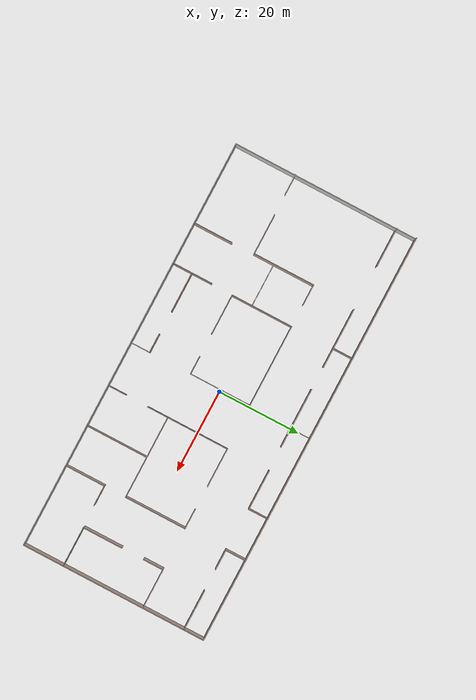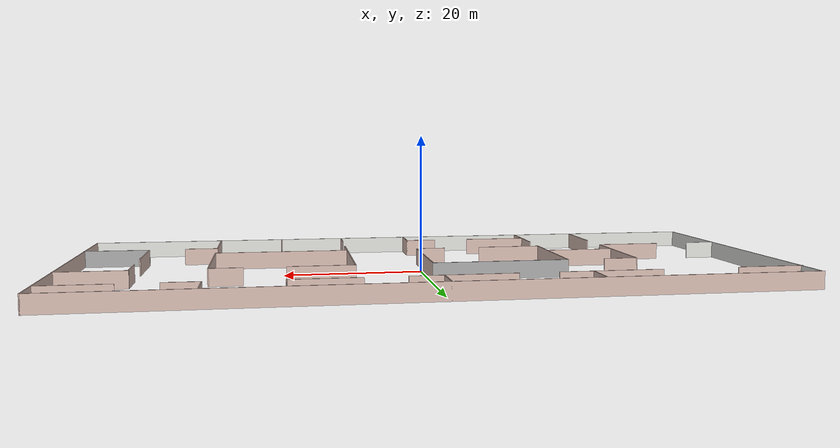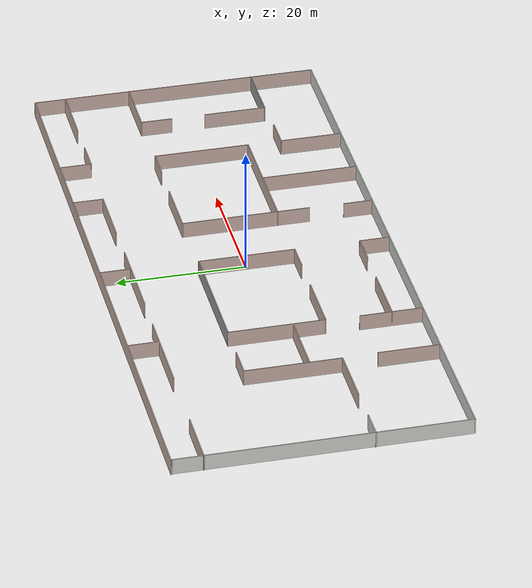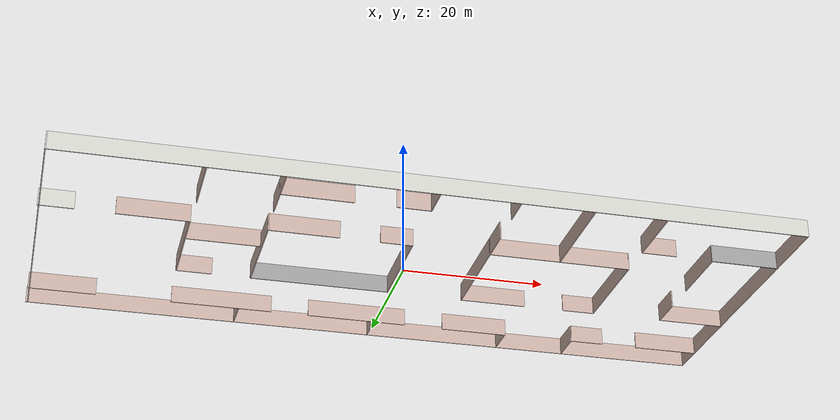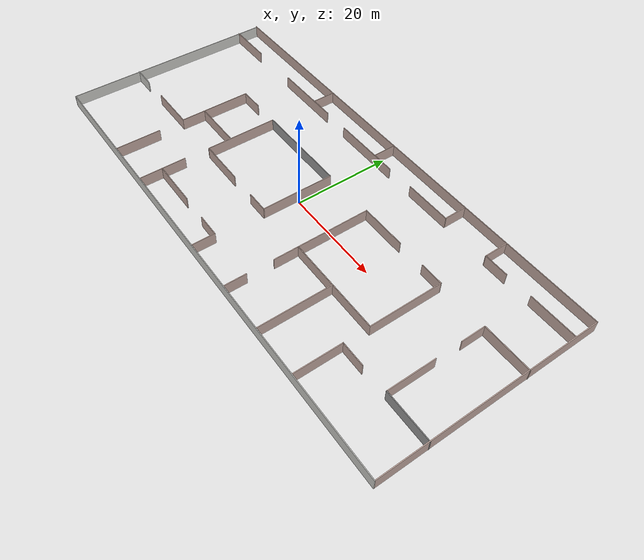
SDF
<?xml version='1.0'?>
<sdf version='1.6'>
  <model name='Untitled'>
    <pose frame=''>-0.075901 0.121979 0 0 -0 0</pose>
    <link name='Wall_0'>
      <collision name='Wall_0_Collision'>
        <geometry>
          <box>
            <size>100.25 0.15 2.5</size>
          </box>
        </geometry>
        <pose frame=''>0 0 1.25 0 -0 0</pose>
      </collision>
      <visual name='Wall_0_Visual'>
        <pose frame=''>0 0 1.25 0 -0 0</pose>
        <geometry>
          <box>
            <size>100.25 0.15 2.5</size>
          </box>
        </geometry>
        <material>
          <script>
            <uri>file://media/materials/scripts/gazebo.material</uri>
            <name>Gazebo/Grey</name>
          </script>
          <ambient>0.760784 0.662745 0.627451 1</ambient>
        </material>
        <meta>
          <layer>0</layer>
        </meta>
      </visual>
      <pose frame=''>-0.033615 22.425 0 0 -0 0</pose>
    </link>
    <link name='Wall_1'>
      <collision name='Wall_1_Collision'>
        <geometry>
          <box>
            <size>45 0.15 2.5</size>
          </box>
        </geometry>
        <pose frame=''>0 0 1.25 0 -0 0</pose>
      </collision>
      <visual name='Wall_1_Visual'>
        <pose frame=''>0 0 1.25 0 -0 0</pose>
        <geometry>
          <box>
            <size>45 0.15 2.5</size>
          </box>
        </geometry>
        <material>
          <script>
            <uri>file://media/materials/scripts/gazebo.material</uri>
            <name>Gazebo/Grey</name>
          </script>
          <ambient>0.760784 0.662745 0.627451 1</ambient>
        </material>
        <meta>
          <layer>0</layer>
        </meta>
      </visual>
      <pose frame=''>50.0164 -0 0 0 -0 -1.5708</pose>
    </link>
    <link name='Wall_11'>
      <collision name='Wall_11_Collision'>
        <geometry>
          <box>
            <size>14.5 0.15 2.5</size>
          </box>
        </geometry>
        <pose frame=''>0 0 1.25 0 -0 0</pose>
      </collision>
      <visual name='Wall_11_Visual'>
        <pose frame=''>0 0 1.25 0 -0 0</pose>
        <geometry>
          <box>
            <size>14.5 0.15 2.5</size>
          </box>
        </geometry>
        <material>
          <script>
            <uri>file://media/materials/scripts/gazebo.material</uri>
            <name>Gazebo/Grey</name>
          </script>
          <ambient>0.760784 0.662745 0.627451 1</ambient>
        </material>
        <meta>
          <layer>0</layer>
        </meta>
      </visual>
      <pose frame=''>-22.6473 17.6241 0 0 -0 0</pose>
    </link>
    <link name='Wall_13'>
      <collision name='Wall_13_Collision'>
        <geometry>
          <box>
            <size>4.75 0.15 2.5</size>
          </box>
        </geometry>
        <pose frame=''>0 0 1.25 0 -0 0</pose>
      </collision>
      <visual name='Wall_13_Visual'>
        <pose frame=''>0 0 1.25 0 -0 0</pose>
        <geometry>
          <box>
            <size>4.75 0.15 2.5</size>
          </box>
        </geometry>
        <material>
          <script>
            <uri>file://media/materials/scripts/gazebo.material</uri>
            <name>Gazebo/Grey</name>
          </script>
          <ambient>0.760784 0.662745 0.627451 1</ambient>
        </material>
        <meta>
          <layer>0</layer>
        </meta>
      </visual>
      <pose frame=''>-0.122057 20.125 0 0 -0 -1.5708</pose>
    </link>
    <link name='Wall_15'>
      <collision name='Wall_15_Collision'>
        <geometry>
          <box>
            <size>14.5 0.15 2.5</size>
          </box>
        </geometry>
        <pose frame=''>0 0 1.25 0 -0 0</pose>
      </collision>
      <visual name='Wall_15_Visual'>
        <pose frame=''>0 0 1.25 0 -0 0</pose>
        <geometry>
          <box>
            <size>14.5 0.15 2.5</size>
          </box>
        </geometry>
        <material>
          <script>
            <uri>file://media/materials/scripts/gazebo.material</uri>
            <name>Gazebo/Grey</name>
          </script>
          <ambient>0.760784 0.662745 0.627451 1</ambient>
        </material>
        <meta>
          <layer>0</layer>
        </meta>
      </visual>
      <pose frame=''>-2.71153 17.6241 0 0 -0 0</pose>
    </link>
    <link name='Wall_17'>
      <collision name='Wall_17_Collision'>
        <geometry>
          <box>
            <size>4.75 0.15 2.5</size>
          </box>
        </geometry>
        <pose frame=''>0 0 1.25 0 -0 0</pose>
      </collision>
      <visual name='Wall_17_Visual'>
        <pose frame=''>0 0 1.25 0 -0 0</pose>
        <geometry>
          <box>
            <size>4.75 0.15 2.5</size>
          </box>
        </geometry>
        <material>
          <script>
            <uri>file://media/materials/scripts/gazebo.material</uri>
            <name>Gazebo/Grey</name>
          </script>
          <ambient>0.760784 0.662745 0.627451 1</ambient>
        </material>
        <meta>
          <layer>0</layer>
        </meta>
      </visual>
      <pose frame=''>19.8951 20.0436 0 0 -0 -1.5708</pose>
    </link>
    <link name='Wall_18'>
      <collision name='Wall_18_Collision'>
        <geometry>
          <box>
            <size>9.75 0.15 2.5</size>
          </box>
        </geometry>
        <pose frame=''>0 0 1.25 0 -0 0</pose>
      </collision>
      <visual name='Wall_18_Visual'>
        <pose frame=''>0 0 1.25 0 -0 0</pose>
        <geometry>
          <box>
            <size>9.75 0.15 2.5</size>
          </box>
        </geometry>
        <material>
          <script>
            <uri>file://media/materials/scripts/gazebo.material</uri>
            <name>Gazebo/Grey</name>
          </script>
          <ambient>0.760784 0.662745 0.627451 1</ambient>
        </material>
        <meta>
          <layer>0</layer>
        </meta>
      </visual>
      <pose frame=''>15.0951 17.7436 0 0 -0 3.14159</pose>
    </link>
    <link name='Wall_2'>
      <collision name='Wall_2_Collision'>
        <geometry>
          <box>
            <size>100 0.15 2.5</size>
          </box>
        </geometry>
        <pose frame=''>0 0 1.25 0 -0 0</pose>
      </collision>
      <visual name='Wall_2_Visual'>
        <pose frame=''>0 0 1.25 0 -0 0</pose>
        <geometry>
          <box>
            <size>100 0.15 2.5</size>
          </box>
        </geometry>
        <material>
          <script>
            <uri>file://media/materials/scripts/gazebo.material</uri>
            <name>Gazebo/CeilingTiled</name>
          </script>
          <ambient>0.760784 0.662745 0.627451 1</ambient>
        </material>
        <meta>
          <layer>0</layer>
        </meta>
      </visual>
      <pose frame=''>0.091385 -22.425 0 0 -0 3.14159</pose>
    </link>
    <link name='Wall_20'>
      <collision name='Wall_20_Collision'>
        <geometry>
          <box>
            <size>5 0.15 2.5</size>
          </box>
        </geometry>
        <pose frame=''>0 0 1.25 0 -0 0</pose>
      </collision>
      <visual name='Wall_20_Visual'>
        <pose frame=''>0 0 1.25 0 -0 0</pose>
        <geometry>
          <box>
            <size>5 0.15 2.5</size>
          </box>
        </geometry>
        <material>
          <script>
            <uri>file://media/materials/scripts/gazebo.material</uri>
            <name>Gazebo/Grey</name>
          </script>
          <ambient>0.760784 0.662745 0.627451 1</ambient>
        </material>
        <meta>
          <layer>0</layer>
        </meta>
      </visual>
      <pose frame=''>30.2292 19.9186 0 0 -0 -1.5708</pose>
    </link>
    <link name='Wall_21'>
      <collision name='Wall_21_Collision'>
        <geometry>
          <box>
            <size>5 0.15 2.5</size>
          </box>
        </geometry>
        <pose frame=''>0 0 1.25 0 -0 0</pose>
      </collision>
      <visual name='Wall_21_Visual'>
        <pose frame=''>0 0 1.25 0 -0 0</pose>
        <geometry>
          <box>
            <size>5 0.15 2.5</size>
          </box>
        </geometry>
        <material>
          <script>
            <uri>file://media/materials/scripts/gazebo.material</uri>
            <name>Gazebo/Grey</name>
          </script>
          <ambient>0.760784 0.662745 0.627451 1</ambient>
        </material>
        <meta>
          <layer>0</layer>
        </meta>
      </visual>
      <pose frame=''>32.6542 17.4936 0 0 -0 0</pose>
    </link>
    <link name='Wall_23'>
      <collision name='Wall_23_Collision'>
        <geometry>
          <box>
            <size>9.5 0.15 2.5</size>
          </box>
        </geometry>
        <pose frame=''>0 0 1.25 0 -0 0</pose>
      </collision>
      <visual name='Wall_23_Visual'>
        <pose frame=''>0 0 1.25 0 -0 0</pose>
        <geometry>
          <box>
            <size>9.5 0.15 2.5</size>
          </box>
        </geometry>
        <material>
          <script>
            <uri>file://media/materials/scripts/gazebo.material</uri>
            <name>Gazebo/Grey</name>
          </script>
          <ambient>0.760784 0.662745 0.627451 1</ambient>
        </material>
        <meta>
          <layer>0</layer>
        </meta>
      </visual>
      <pose frame=''>45.2383 17.5428 0 0 -0 0</pose>
    </link>
    <link name='Wall_25'>
      <collision name='Wall_25_Collision'>
        <geometry>
          <box>
            <size>9.75 0.15 2.5</size>
          </box>
        </geometry>
        <pose frame=''>0 0 1.25 0 -0 0</pose>
      </collision>
      <visual name='Wall_25_Visual'>
        <pose frame=''>0 0 1.25 0 -0 0</pose>
        <geometry>
          <box>
            <size>9.75 0.15 2.5</size>
          </box>
        </geometry>
        <material>
          <script>
            <uri>file://media/materials/scripts/gazebo.material</uri>
            <name>Gazebo/Grey</name>
          </script>
          <ambient>0.760784 0.662745 0.627451 1</ambient>
        </material>
        <meta>
          <layer>0</layer>
        </meta>
      </visual>
      <pose frame=''>45.2836 7.29007 0 0 -0 3.14159</pose>
    </link>
    <link name='Wall_26'>
      <collision name='Wall_26_Collision'>
        <geometry>
          <box>
            <size>5 0.15 2.5</size>
          </box>
        </geometry>
        <pose frame=''>0 0 1.25 0 -0 0</pose>
      </collision>
      <visual name='Wall_26_Visual'>
        <pose frame=''>0 0 1.25 0 -0 0</pose>
        <geometry>
          <box>
            <size>5 0.15 2.5</size>
          </box>
        </geometry>
        <material>
          <script>
            <uri>file://media/materials/scripts/gazebo.material</uri>
            <name>Gazebo/Grey</name>
          </script>
          <ambient>0.760784 0.662745 0.627451 1</ambient>
        </material>
        <meta>
          <layer>0</layer>
        </meta>
      </visual>
      <pose frame=''>40.4836 4.86507 0 0 -0 -1.5708</pose>
    </link>
    <link name='Wall_28'>
      <collision name='Wall_28_Collision'>
        <geometry>
          <box>
            <size>9.75 0.15 2.5</size>
          </box>
        </geometry>
        <pose frame=''>0 0 1.25 0 -0 0</pose>
      </collision>
      <visual name='Wall_28_Visual'>
        <pose frame=''>0 0 1.25 0 -0 0</pose>
        <geometry>
          <box>
            <size>9.75 0.15 2.5</size>
          </box>
        </geometry>
        <material>
          <script>
            <uri>file://media/materials/scripts/gazebo.material</uri>
            <name>Gazebo/Grey</name>
          </script>
          <ambient>1 1 1 1</ambient>
        </material>
        <meta>
          <layer>0</layer>
        </meta>
      </visual>
      <pose frame=''>45.2836 -12.5644 0 0 -0 3.14159</pose>
    </link>
    <link name='Wall_29'>
      <collision name='Wall_29_Collision'>
        <geometry>
          <box>
            <size>9.75 0.15 2.5</size>
          </box>
        </geometry>
        <pose frame=''>0 0 1.25 0 -0 0</pose>
      </collision>
      <visual name='Wall_29_Visual'>
        <pose frame=''>0 0 1.25 0 -0 0</pose>
        <geometry>
          <box>
            <size>9.75 0.15 2.5</size>
          </box>
        </geometry>
        <material>
          <script>
            <uri>file://media/materials/scripts/gazebo.material</uri>
            <name>Gazebo/Grey</name>
          </script>
          <ambient>0.760784 0.662745 0.627451 1</ambient>
        </material>
        <meta>
          <layer>0</layer>
        </meta>
      </visual>
      <pose frame=''>40.4836 -7.76436 0 0 -0 1.5708</pose>
    </link>
    <link name='Wall_3'>
      <collision name='Wall_3_Collision'>
        <geometry>
          <box>
            <size>44.75 0.15 2.5</size>
          </box>
        </geometry>
        <pose frame=''>0 0 1.25 0 -0 0</pose>
      </collision>
      <visual name='Wall_3_Visual'>
        <pose frame=''>0 0 1.25 0 -0 0</pose>
        <geometry>
          <box>
            <size>44.75 0.15 2.5</size>
          </box>
        </geometry>
        <material>
          <script>
            <uri>file://media/materials/scripts/gazebo.material</uri>
            <name>Gazebo/CeilingTiled</name>
          </script>
          <ambient>0.760784 0.662745 0.627451 1</ambient>
        </material>
        <meta>
          <layer>0</layer>
        </meta>
      </visual>
      <pose frame=''>-49.8336 -0.125 0 0 -0 1.5708</pose>
    </link>
    <link name='Wall_31'>
      <collision name='Wall_31_Collision'>
        <geometry>
          <box>
            <size>9.75 0.15 2.5</size>
          </box>
        </geometry>
        <pose frame=''>0 0 1.25 0 -0 0</pose>
      </collision>
      <visual name='Wall_31_Visual'>
        <pose frame=''>0 0 1.25 0 -0 0</pose>
        <geometry>
          <box>
            <size>9.75 0.15 2.5</size>
          </box>
        </geometry>
        <material>
          <script>
            <uri>file://media/materials/scripts/gazebo.material</uri>
            <name>Gazebo/Grey</name>
          </script>
          <ambient>0.760784 0.662745 0.627451 1</ambient>
        </material>
        <meta>
          <layer>0</layer>
        </meta>
      </visual>
      <pose frame=''>30.2292 -17.6102 0 0 -0 1.5708</pose>
    </link>
    <link name='Wall_32'>
      <collision name='Wall_32_Collision'>
        <geometry>
          <box>
            <size>5 0.15 2.5</size>
          </box>
        </geometry>
        <pose frame=''>0 0 1.25 0 -0 0</pose>
      </collision>
      <visual name='Wall_32_Visual'>
        <pose frame=''>0 0 1.25 0 -0 0</pose>
        <geometry>
          <box>
            <size>5 0.15 2.5</size>
          </box>
        </geometry>
        <material>
          <script>
            <uri>file://media/materials/scripts/gazebo.material</uri>
            <name>Gazebo/Grey</name>
          </script>
          <ambient>0.760784 0.662745 0.627451 1</ambient>
        </material>
        <meta>
          <layer>0</layer>
        </meta>
      </visual>
      <pose frame=''>32.6542 -12.8102 0 0 -0 0</pose>
    </link>
    <link name='Wall_34'>
      <collision name='Wall_34_Collision'>
        <geometry>
          <box>
            <size>4.5 0.15 2.5</size>
          </box>
        </geometry>
        <pose frame=''>0 0 1.25 0 -0 0</pose>
      </collision>
      <visual name='Wall_34_Visual'>
        <pose frame=''>0 0 1.25 0 -0 0</pose>
        <geometry>
          <box>
            <size>4.5 0.15 2.5</size>
          </box>
        </geometry>
        <material>
          <script>
            <uri>file://media/materials/scripts/gazebo.material</uri>
            <name>Gazebo/Grey</name>
          </script>
          <ambient>0.760784 0.662745 0.627451 1</ambient>
        </material>
        <meta>
          <layer>0</layer>
        </meta>
      </visual>
      <pose frame=''>10.2934 -20.1538 0 0 -0 1.5708</pose>
    </link>
    <link name='Wall_36'>
      <collision name='Wall_36_Collision'>
        <geometry>
          <box>
            <size>9.75 0.15 2.5</size>
          </box>
        </geometry>
        <pose frame=''>0 0 1.25 0 -0 0</pose>
      </collision>
      <visual name='Wall_36_Visual'>
        <pose frame=''>0 0 1.25 0 -0 0</pose>
        <geometry>
          <box>
            <size>9.75 0.15 2.5</size>
          </box>
        </geometry>
        <material>
          <script>
            <uri>file://media/materials/scripts/gazebo.material</uri>
            <name>Gazebo/Grey</name>
          </script>
          <ambient>0.760784 0.662745 0.627451 1</ambient>
        </material>
        <meta>
          <layer>0</layer>
        </meta>
      </visual>
      <pose frame=''>-20.2206 -17.6102 0 0 -0 1.5708</pose>
    </link>
    <link name='Wall_38'>
      <collision name='Wall_38_Collision'>
        <geometry>
          <box>
            <size>9.75 0.15 2.5</size>
          </box>
        </geometry>
        <pose frame=''>0 0 1.25 0 -0 0</pose>
      </collision>
      <visual name='Wall_38_Visual'>
        <pose frame=''>0 0 1.25 0 -0 0</pose>
        <geometry>
          <box>
            <size>9.75 0.15 2.5</size>
          </box>
        </geometry>
        <material>
          <script>
            <uri>file://media/materials/scripts/gazebo.material</uri>
            <name>Gazebo/Grey</name>
          </script>
          <ambient>0.760784 0.662745 0.627451 1</ambient>
        </material>
        <meta>
          <layer>0</layer>
        </meta>
      </visual>
      <pose frame=''>-15.4206 -17.6907 0 0 -0 0</pose>
    </link>
    <link name='Wall_40'>
      <collision name='Wall_40_Collision'>
        <geometry>
          <box>
            <size>9.5 0.15 2.5</size>
          </box>
        </geometry>
        <pose frame=''>0 0 1.25 0 -0 0</pose>
      </collision>
      <visual name='Wall_40_Visual'>
        <pose frame=''>0 0 1.25 0 -0 0</pose>
        <geometry>
          <box>
            <size>9.5 0.15 2.5</size>
          </box>
        </geometry>
        <material>
          <script>
            <uri>file://media/materials/scripts/gazebo.material</uri>
            <name>Gazebo/Grey</name>
          </script>
          <ambient>0.760784 0.662745 0.627451 1</ambient>
        </material>
        <meta>
          <layer>0</layer>
        </meta>
      </visual>
      <pose frame=''>-30.2292 -17.7352 0 0 -0 1.5708</pose>
    </link>
    <link name='Wall_42'>
      <collision name='Wall_42_Collision'>
        <geometry>
          <box>
            <size>4.75 0.15 2.5</size>
          </box>
        </geometry>
        <pose frame=''>0 0 1.25 0 -0 0</pose>
      </collision>
      <visual name='Wall_42_Visual'>
        <pose frame=''>0 0 1.25 0 -0 0</pose>
        <geometry>
          <box>
            <size>4.75 0.15 2.5</size>
          </box>
        </geometry>
        <material>
          <script>
            <uri>file://media/materials/scripts/gazebo.material</uri>
            <name>Gazebo/Grey</name>
          </script>
          <ambient>0.760784 0.662745 0.627451 1</ambient>
        </material>
        <meta>
          <layer>0</layer>
        </meta>
      </visual>
      <pose frame=''>-2.70429 -17.7721 0 0 -0 0</pose>
    </link>
    <link name='Wall_43'>
      <collision name='Wall_43_Collision'>
        <geometry>
          <box>
            <size>4.75 0.15 2.5</size>
          </box>
        </geometry>
        <pose frame=''>0 0 1.25 0 -0 0</pose>
      </collision>
      <visual name='Wall_43_Visual'>
        <pose frame=''>0 0 1.25 0 -0 0</pose>
        <geometry>
          <box>
            <size>4.75 0.15 2.5</size>
          </box>
        </geometry>
        <material>
          <script>
            <uri>file://media/materials/scripts/gazebo.material</uri>
            <name>Gazebo/Grey</name>
          </script>
          <ambient>0.760784 0.662745 0.627451 1</ambient>
        </material>
        <meta>
          <layer>0</layer>
        </meta>
      </visual>
      <pose frame=''>-0.404294 -20.0721 0 0 -0 -1.5708</pose>
    </link>
    <link name='Wall_45'>
      <collision name='Wall_45_Collision'>
        <geometry>
          <box>
            <size>9.75 0.15 2.5</size>
          </box>
        </geometry>
        <pose frame=''>0 0 1.25 0 -0 0</pose>
      </collision>
      <visual name='Wall_45_Visual'>
        <pose frame=''>0 0 1.25 0 -0 0</pose>
        <geometry>
          <box>
            <size>9.75 0.15 2.5</size>
          </box>
        </geometry>
        <material>
          <script>
            <uri>file://media/materials/scripts/gazebo.material</uri>
            <name>Gazebo/Grey</name>
          </script>
          <ambient>0.760784 0.662745 0.627451 1</ambient>
        </material>
        <meta>
          <layer>0</layer>
        </meta>
      </visual>
      <pose frame=''>-35.1937 -7.60076 0 0 -0 0</pose>
    </link>
    <link name='Wall_46'>
      <collision name='Wall_46_Collision'>
        <geometry>
          <box>
            <size>15 0.15 2.5</size>
          </box>
        </geometry>
        <pose frame=''>0 0 1.25 0 -0 0</pose>
      </collision>
      <visual name='Wall_46_Visual'>
        <pose frame=''>0 0 1.25 0 -0 0</pose>
        <geometry>
          <box>
            <size>15 0.15 2.5</size>
          </box>
        </geometry>
        <material>
          <script>
            <uri>file://media/materials/scripts/gazebo.material</uri>
            <name>Gazebo/Grey</name>
          </script>
          <ambient>0.760784 0.662745 0.627451 1</ambient>
        </material>
        <meta>
          <layer>0</layer>
        </meta>
      </visual>
      <pose frame=''>-30.3937 -0.175758 0 0 -0 1.5708</pose>
    </link>
    <link name='Wall_47'>
      <collision name='Wall_47_Collision'>
        <geometry>
          <box>
            <size>5 0.15 2.5</size>
          </box>
        </geometry>
        <pose frame=''>0 0 1.25 0 -0 0</pose>
      </collision>
      <visual name='Wall_47_Visual'>
        <pose frame=''>0 0 1.25 0 -0 0</pose>
        <geometry>
          <box>
            <size>5 0.15 2.5</size>
          </box>
        </geometry>
        <material>
          <script>
            <uri>file://media/materials/scripts/gazebo.material</uri>
            <name>Gazebo/Grey</name>
          </script>
          <ambient>0.760784 0.662745 0.627451 1</ambient>
        </material>
        <meta>
          <layer>0</layer>
        </meta>
      </visual>
      <pose frame=''>-27.9687 7.24924 0 0 -0 0</pose>
    </link>
    <link name='Wall_49'>
      <collision name='Wall_49_Collision'>
        <geometry>
          <box>
            <size>10 0.15 2.5</size>
          </box>
        </geometry>
        <pose frame=''>0 0 1.25 0 -0 0</pose>
      </collision>
      <visual name='Wall_49_Visual'>
        <pose frame=''>0 0 1.25 0 -0 0</pose>
        <geometry>
          <box>
            <size>10 0.15 2.5</size>
          </box>
        </geometry>
        <material>
          <script>
            <uri>file://media/materials/scripts/gazebo.material</uri>
            <name>Gazebo/Grey</name>
          </script>
          <ambient>0.760784 0.662745 0.627451 1</ambient>
        </material>
        <meta>
          <layer>0</layer>
        </meta>
      </visual>
      <pose frame=''>-25.3042 -2.63715 0 0 -0 0</pose>
    </link>
    <link name='Wall_5'>
      <collision name='Wall_5_Collision'>
        <geometry>
          <box>
            <size>9.5 0.15 2.5</size>
          </box>
        </geometry>
        <pose frame=''>0 0 1.25 0 -0 0</pose>
      </collision>
      <visual name='Wall_5_Visual'>
        <pose frame=''>0 0 1.25 0 -0 0</pose>
        <geometry>
          <box>
            <size>9.5 0.15 2.5</size>
          </box>
        </geometry>
        <material>
          <script>
            <uri>file://media/materials/scripts/gazebo.material</uri>
            <name>Gazebo/Grey</name>
          </script>
          <ambient>0.760784 0.662745 0.627451 1</ambient>
        </material>
        <meta>
          <layer>0</layer>
        </meta>
      </visual>
      <pose frame=''>-45.3272 17.6241 0 0 -0 0</pose>
    </link>
    <link name='Wall_51'>
      <collision name='Wall_51_Collision'>
        <geometry>
          <box>
            <size>9.75 0.15 2.5</size>
          </box>
        </geometry>
        <pose frame=''>0 0 1.25 0 -0 0</pose>
      </collision>
      <visual name='Wall_51_Visual'>
        <pose frame=''>0 0 1.25 0 -0 0</pose>
        <geometry>
          <box>
            <size>9.75 0.15 2.5</size>
          </box>
        </geometry>
        <material>
          <script>
            <uri>file://media/materials/scripts/gazebo.material</uri>
            <name>Gazebo/Grey</name>
          </script>
          <ambient>0.760784 0.662745 0.627451 1</ambient>
        </material>
        <meta>
          <layer>0</layer>
        </meta>
      </visual>
      <pose frame=''>-15.2561 -7.60076 0 0 -0 3.14159</pose>
    </link>
    <link name='Wall_52'>
      <collision name='Wall_52_Collision'>
        <geometry>
          <box>
            <size>15 0.15 2.5</size>
          </box>
        </geometry>
        <pose frame=''>0 0 1.25 0 -0 0</pose>
      </collision>
      <visual name='Wall_52_Visual'>
        <pose frame=''>0 0 1.25 0 -0 0</pose>
        <geometry>
          <box>
            <size>15 0.15 2.5</size>
          </box>
        </geometry>
        <material>
          <script>
            <uri>file://media/materials/scripts/gazebo.material</uri>
            <name>Gazebo/Grey</name>
          </script>
          <ambient>0.760784 0.662745 0.627451 1</ambient>
        </material>
        <meta>
          <layer>0</layer>
        </meta>
      </visual>
      <pose frame=''>-20.0561 -0.175758 0 0 -0 1.5708</pose>
    </link>
    <link name='Wall_53'>
      <collision name='Wall_53_Collision'>
        <geometry>
          <box>
            <size>19.75 0.15 2.5</size>
          </box>
        </geometry>
        <pose frame=''>0 0 1.25 0 -0 0</pose>
      </collision>
      <visual name='Wall_53_Visual'>
        <pose frame=''>0 0 1.25 0 -0 0</pose>
        <geometry>
          <box>
            <size>19.75 0.15 2.5</size>
          </box>
        </geometry>
        <material>
          <script>
            <uri>file://media/materials/scripts/gazebo.material</uri>
            <name>Gazebo/Grey</name>
          </script>
          <ambient>1 1 1 1</ambient>
        </material>
        <meta>
          <layer>0</layer>
        </meta>
      </visual>
      <pose frame=''>-10.2561 7.24924 0 0 -0 0</pose>
    </link>
    <link name='Wall_54'>
      <collision name='Wall_54_Collision'>
        <geometry>
          <box>
            <size>15 0.15 2.5</size>
          </box>
        </geometry>
        <pose frame=''>0 0 1.25 0 -0 0</pose>
      </collision>
      <visual name='Wall_54_Visual'>
        <pose frame=''>0 0 1.25 0 -0 0</pose>
        <geometry>
          <box>
            <size>15 0.15 2.5</size>
          </box>
        </geometry>
        <material>
          <script>
            <uri>file://media/materials/scripts/gazebo.material</uri>
            <name>Gazebo/Grey</name>
          </script>
          <ambient>0.760784 0.662745 0.627451 1</ambient>
        </material>
        <meta>
          <layer>0</layer>
        </meta>
      </visual>
      <pose frame=''>-0.456125 -0.175758 0 0 -0 -1.5708</pose>
    </link>
    <link name='Wall_55'>
      <collision name='Wall_55_Collision'>
        <geometry>
          <box>
            <size>4.5 0.15 2.5</size>
          </box>
        </geometry>
        <pose frame=''>0 0 1.25 0 -0 0</pose>
      </collision>
      <visual name='Wall_55_Visual'>
        <pose frame=''>0 0 1.25 0 -0 0</pose>
        <geometry>
          <box>
            <size>4.5 0.15 2.5</size>
          </box>
        </geometry>
        <material>
          <script>
            <uri>file://media/materials/scripts/gazebo.material</uri>
            <name>Gazebo/Grey</name>
          </script>
          <ambient>0.760784 0.662745 0.627451 1</ambient>
        </material>
        <meta>
          <layer>0</layer>
        </meta>
      </visual>
      <pose frame=''>-2.63112 -7.60076 0 0 -0 3.14159</pose>
    </link>
    <link name='Wall_57'>
      <collision name='Wall_57_Collision'>
        <geometry>
          <box>
            <size>9.5 0.15 2.5</size>
          </box>
        </geometry>
        <pose frame=''>0 0 1.25 0 -0 0</pose>
      </collision>
      <visual name='Wall_57_Visual'>
        <pose frame=''>0 0 1.25 0 -0 0</pose>
        <geometry>
          <box>
            <size>9.5 0.15 2.5</size>
          </box>
        </geometry>
        <material>
          <script>
            <uri>file://media/materials/scripts/gazebo.material</uri>
            <name>Gazebo/Grey</name>
          </script>
          <ambient>0.760784 0.662745 0.627451 1</ambient>
        </material>
        <meta>
          <layer>0</layer>
        </meta>
      </visual>
      <pose frame=''>15.0574 7.37144 0 0 -0 3.14159</pose>
    </link>
    <link name='Wall_58'>
      <collision name='Wall_58_Collision'>
        <geometry>
          <box>
            <size>20 0.15 2.5</size>
          </box>
        </geometry>
        <pose frame=''>0 0 1.25 0 -0 0</pose>
      </collision>
      <visual name='Wall_58_Visual'>
        <pose frame=''>0 0 1.25 0 -0 0</pose>
        <geometry>
          <box>
            <size>20 0.15 2.5</size>
          </box>
        </geometry>
        <material>
          <script>
            <uri>file://media/materials/scripts/gazebo.material</uri>
            <name>Gazebo/Grey</name>
          </script>
          <ambient>0.760784 0.662745 0.627451 1</ambient>
        </material>
        <meta>
          <layer>0</layer>
        </meta>
      </visual>
      <pose frame=''>10.3824 -2.55356 0 0 -0 -1.5708</pose>
    </link>
    <link name='Wall_60'>
      <collision name='Wall_60_Collision'>
        <geometry>
          <box>
            <size>20 0.15 2.5</size>
          </box>
        </geometry>
        <pose frame=''>0 0 1.25 0 -0 0</pose>
      </collision>
      <visual name='Wall_60_Visual'>
        <pose frame=''>0 0 1.25 0 -0 0</pose>
        <geometry>
          <box>
            <size>20 0.15 2.5</size>
          </box>
        </geometry>
        <material>
          <script>
            <uri>file://media/materials/scripts/gazebo.material</uri>
            <name>Gazebo/Grey</name>
          </script>
          <ambient>0.760784 0.662745 0.627451 1</ambient>
        </material>
        <meta>
          <layer>0</layer>
        </meta>
      </visual>
      <pose frame=''>20.2998 -7.51939 0 0 -0 0</pose>
    </link>
    <link name='Wall_61'>
      <collision name='Wall_61_Collision'>
        <geometry>
          <box>
            <size>15 0.15 2.5</size>
          </box>
        </geometry>
        <pose frame=''>0 0 1.25 0 -0 0</pose>
      </collision>
      <visual name='Wall_61_Visual'>
        <pose frame=''>0 0 1.25 0 -0 0</pose>
        <geometry>
          <box>
            <size>15 0.15 2.5</size>
          </box>
        </geometry>
        <material>
          <script>
            <uri>file://media/materials/scripts/gazebo.material</uri>
            <name>Gazebo/Grey</name>
          </script>
          <ambient>0.760784 0.662745 0.627451 1</ambient>
        </material>
        <meta>
          <layer>0</layer>
        </meta>
      </visual>
      <pose frame=''>30.2248 -0.094387 0 0 -0 1.5708</pose>
    </link>
    <link name='Wall_62'>
      <collision name='Wall_62_Collision'>
        <geometry>
          <box>
            <size>4.75 0.15 2.5</size>
          </box>
        </geometry>
        <pose frame=''>0 0 1.25 0 -0 0</pose>
      </collision>
      <visual name='Wall_62_Visual'>
        <pose frame=''>0 0 1.25 0 -0 0</pose>
        <geometry>
          <box>
            <size>4.75 0.15 2.5</size>
          </box>
        </geometry>
        <material>
          <script>
            <uri>file://media/materials/scripts/gazebo.material</uri>
            <name>Gazebo/Grey</name>
          </script>
          <ambient>0.760784 0.662745 0.627451 1</ambient>
        </material>
        <meta>
          <layer>0</layer>
        </meta>
      </visual>
      <pose frame=''>27.9248 7.33061 0 0 -0 3.14159</pose>
    </link>
    <link name='Wall_64'>
      <collision name='Wall_64_Collision'>
        <geometry>
          <box>
            <size>15 0.15 2.5</size>
          </box>
        </geometry>
        <pose frame=''>0 0 1.25 0 -0 0</pose>
      </collision>
      <visual name='Wall_64_Visual'>
        <pose frame=''>0 0 1.25 0 -0 0</pose>
        <geometry>
          <box>
            <size>15 0.15 2.5</size>
          </box>
        </geometry>
        <material>
          <script>
            <uri>file://media/materials/scripts/gazebo.material</uri>
            <name>Gazebo/Grey</name>
          </script>
          <ambient>0.760784 0.662745 0.627451 1</ambient>
        </material>
        <meta>
          <layer>0</layer>
        </meta>
      </visual>
      <pose frame=''>20.302 -14.9444 0 0 -0 -1.5708</pose>
    </link>
    <link name='Wall_7'>
      <collision name='Wall_7_Collision'>
        <geometry>
          <box>
            <size>4.75 0.15 2.5</size>
          </box>
        </geometry>
        <pose frame=''>0 0 1.25 0 -0 0</pose>
      </collision>
      <visual name='Wall_7_Visual'>
        <pose frame=''>0 0 1.25 0 -0 0</pose>
        <geometry>
          <box>
            <size>4.75 0.15 2.5</size>
          </box>
        </geometry>
        <material>
          <script>
            <uri>file://media/materials/scripts/gazebo.material</uri>
            <name>Gazebo/CeilingTiled</name>
          </script>
          <ambient>1 1 1 1</ambient>
        </material>
        <meta>
          <layer>0</layer>
        </meta>
      </visual>
      <pose frame=''>-47.7022 -7.68213 0 0 -0 0</pose>
    </link>
    <link name='Wall_9'>
      <collision name='Wall_9_Collision'>
        <geometry>
          <box>
            <size>4.75 0.15 2.5</size>
          </box>
        </geometry>
        <pose frame=''>0 0 1.25 0 -0 0</pose>
      </collision>
      <visual name='Wall_9_Visual'>
        <pose frame=''>0 0 1.25 0 -0 0</pose>
        <geometry>
          <box>
            <size>4.75 0.15 2.5</size>
          </box>
        </geometry>
        <material>
          <script>
            <uri>file://media/materials/scripts/gazebo.material</uri>
            <name>Gazebo/Grey</name>
          </script>
          <ambient>0.760784 0.662745 0.627451 1</ambient>
        </material>
        <meta>
          <layer>0</layer>
        </meta>
      </visual>
      <pose frame=''>-20.1392 20.0436 0 0 -0 -1.5708</pose>
    </link>
    <static>1</static>
  </model>
</sdf>
